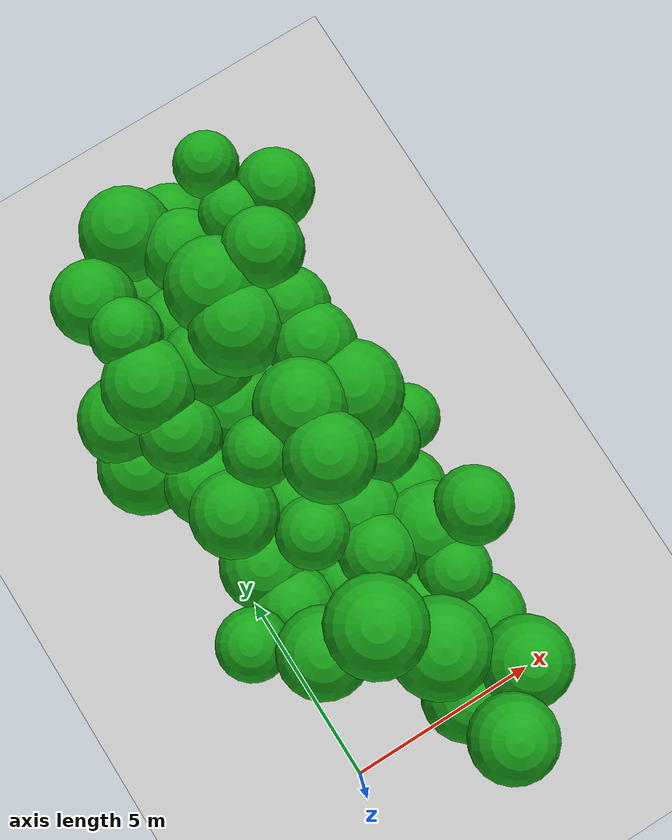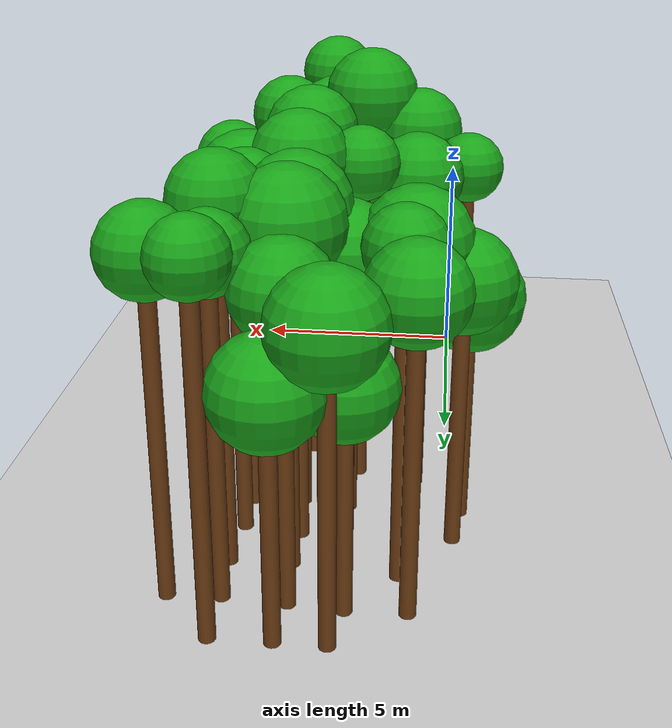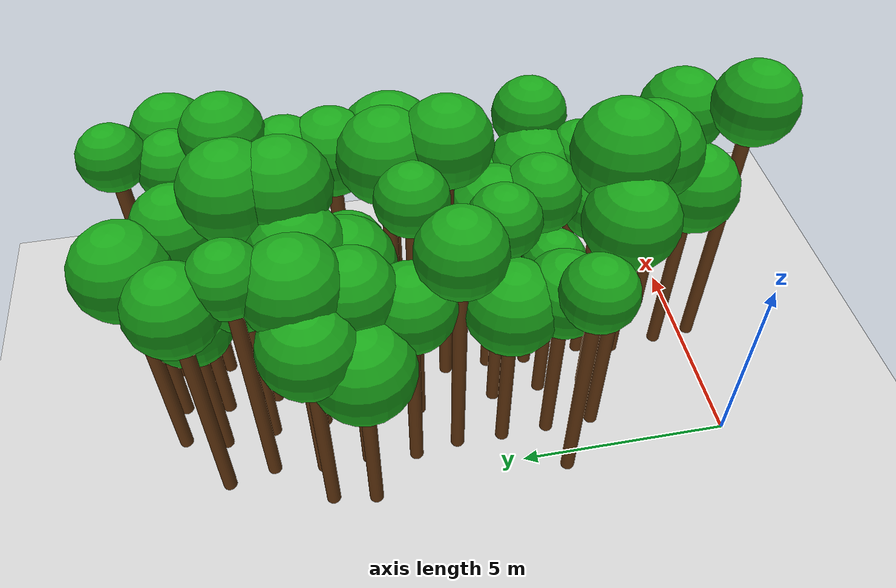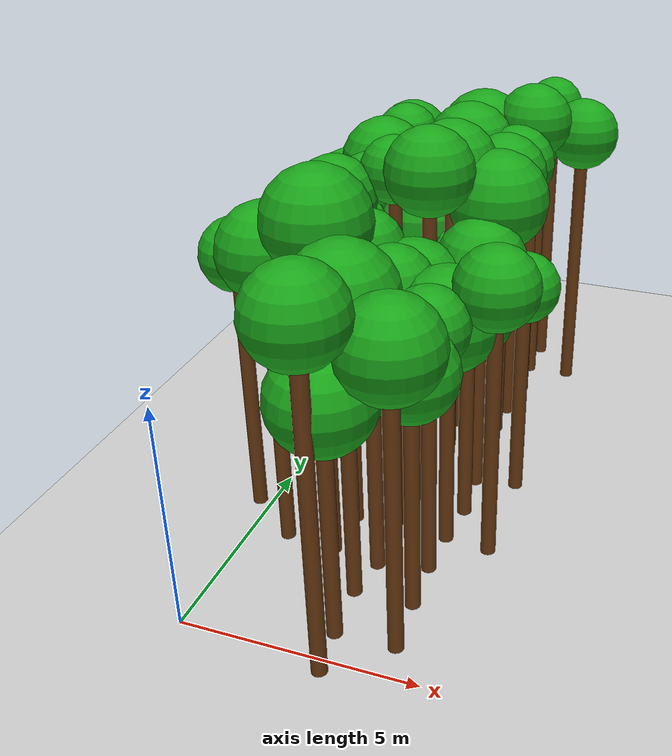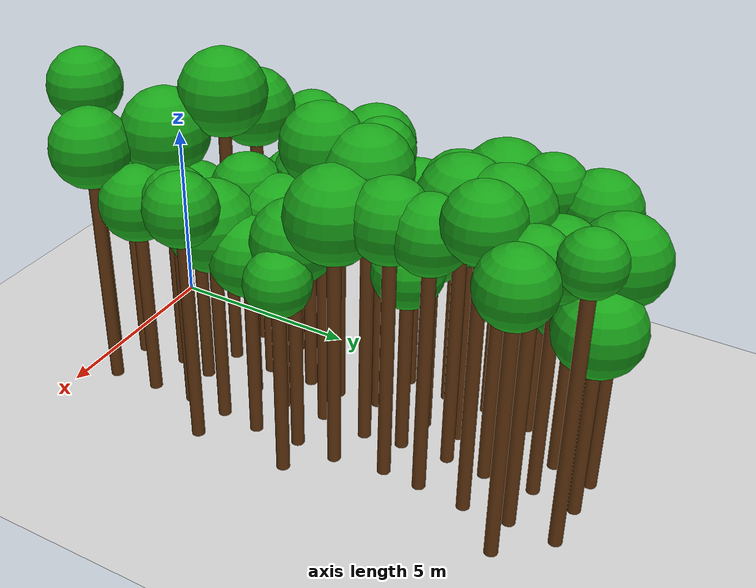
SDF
<sdf version="1.6">
 <world name="forest_world">
  <include><uri>model://sun</uri></include>
  <include><uri>model://ground_plane</uri></include>
  <model name="tree_1502_trunk">
   <static>true</static>
   <pose>-0.30 4.01 2.85 0 0 0</pose>
   <link name="link">
    <collision name="collision">
     <geometry><cylinder><radius>0.16</radius><length>5.70</length></cylinder></geometry>
    </collision>
    <visual name="visual">
     <geometry><cylinder><radius>0.16</radius><length>5.70</length></cylinder></geometry>
     <material><ambient>0.35 0.20 0.05 1</ambient><diffuse>0.45 0.25 0.08 1</diffuse></material>
    </visual>
   </link>
  </model>
  <model name="tree_1502_leaf">
   <static>true</static>
   <pose>-0.30 4.01 6.18 0 0 0</pose>
   <link name="link">
    <collision name="collision"><geometry><sphere><radius>0.79</radius></sphere></geometry></collision>
    <visual name="visual">
     <geometry><sphere><radius>0.79</radius></sphere></geometry>
     <material><ambient>0.05 0.45 0.05 1</ambient><diffuse>0.10 0.65 0.10 1</diffuse></material>
    </visual>
   </link>
  </model>
  <model name="tree_1506_trunk">
   <static>true</static>
   <pose>-0.32 8.59 2.13 0 0 0</pose>
   <link name="link">
    <collision name="collision">
     <geometry><cylinder><radius>0.16</radius><length>4.26</length></cylinder></geometry>
    </collision>
    <visual name="visual">
     <geometry><cylinder><radius>0.16</radius><length>4.26</length></cylinder></geometry>
     <material><ambient>0.35 0.20 0.05 1</ambient><diffuse>0.45 0.25 0.08 1</diffuse></material>
    </visual>
   </link>
  </model>
  <model name="tree_1506_leaf">
   <static>true</static>
   <pose>-0.32 8.59 4.91 0 0 0</pose>
   <link name="link">
    <collision name="collision"><geometry><sphere><radius>1.08</radius></sphere></geometry></collision>
    <visual name="visual">
     <geometry><sphere><radius>1.08</radius></sphere></geometry>
     <material><ambient>0.05 0.45 0.05 1</ambient><diffuse>0.10 0.65 0.10 1</diffuse></material>
    </visual>
   </link>
  </model>
  <model name="tree_1507_trunk">
   <static>true</static>
   <pose>-0.17 9.57 2.52 0 0 0</pose>
   <link name="link">
    <collision name="collision">
     <geometry><cylinder><radius>0.16</radius><length>5.03</length></cylinder></geometry>
    </collision>
    <visual name="visual">
     <geometry><cylinder><radius>0.16</radius><length>5.03</length></cylinder></geometry>
     <material><ambient>0.35 0.20 0.05 1</ambient><diffuse>0.45 0.25 0.08 1</diffuse></material>
    </visual>
   </link>
  </model>
  <model name="tree_1507_leaf">
   <static>true</static>
   <pose>-0.17 9.57 5.63 0 0 0</pose>
   <link name="link">
    <collision name="collision"><geometry><sphere><radius>1.00</radius></sphere></geometry></collision>
    <visual name="visual">
     <geometry><sphere><radius>1.00</radius></sphere></geometry>
     <material><ambient>0.05 0.45 0.05 1</ambient><diffuse>0.10 0.65 0.10 1</diffuse></material>
    </visual>
   </link>
  </model>
  <model name="tree_1551_trunk">
   <static>true</static>
   <pose>0.85 3.10 3.11 0 0 0</pose>
   <link name="link">
    <collision name="collision">
     <geometry><cylinder><radius>0.16</radius><length>6.21</length></cylinder></geometry>
    </collision>
    <visual name="visual">
     <geometry><cylinder><radius>0.16</radius><length>6.21</length></cylinder></geometry>
     <material><ambient>0.35 0.20 0.05 1</ambient><diffuse>0.45 0.25 0.08 1</diffuse></material>
    </visual>
   </link>
  </model>
  <model name="tree_1551_leaf">
   <static>true</static>
   <pose>0.85 3.10 6.80 0 0 0</pose>
   <link name="link">
    <collision name="collision"><geometry><sphere><radius>0.98</radius></sphere></geometry></collision>
    <visual name="visual">
     <geometry><sphere><radius>0.98</radius></sphere></geometry>
     <material><ambient>0.05 0.45 0.05 1</ambient><diffuse>0.10 0.65 0.10 1</diffuse></material>
    </visual>
   </link>
  </model>
  <model name="tree_1552_trunk">
   <static>true</static>
   <pose>0.83 4.24 2.18 0 0 0</pose>
   <link name="link">
    <collision name="collision">
     <geometry><cylinder><radius>0.16</radius><length>4.37</length></cylinder></geometry>
    </collision>
    <visual name="visual">
     <geometry><cylinder><radius>0.16</radius><length>4.37</length></cylinder></geometry>
     <material><ambient>0.35 0.20 0.05 1</ambient><diffuse>0.45 0.25 0.08 1</diffuse></material>
    </visual>
   </link>
  </model>
  <model name="tree_1552_leaf">
   <static>true</static>
   <pose>0.83 4.24 4.94 0 0 0</pose>
   <link name="link">
    <collision name="collision"><geometry><sphere><radius>0.95</radius></sphere></geometry></collision>
    <visual name="visual">
     <geometry><sphere><radius>0.95</radius></sphere></geometry>
     <material><ambient>0.05 0.45 0.05 1</ambient><diffuse>0.10 0.65 0.10 1</diffuse></material>
    </visual>
   </link>
  </model>
  <model name="tree_1553_trunk">
   <static>true</static>
   <pose>0.79 5.36 2.10 0 0 0</pose>
   <link name="link">
    <collision name="collision">
     <geometry><cylinder><radius>0.16</radius><length>4.20</length></cylinder></geometry>
    </collision>
    <visual name="visual">
     <geometry><cylinder><radius>0.16</radius><length>4.20</length></cylinder></geometry>
     <material><ambient>0.35 0.20 0.05 1</ambient><diffuse>0.45 0.25 0.08 1</diffuse></material>
    </visual>
   </link>
  </model>
  <model name="tree_1553_leaf">
   <static>true</static>
   <pose>0.79 5.36 4.83 0 0 0</pose>
   <link name="link">
    <collision name="collision"><geometry><sphere><radius>1.04</radius></sphere></geometry></collision>
    <visual name="visual">
     <geometry><sphere><radius>1.04</radius></sphere></geometry>
     <material><ambient>0.05 0.45 0.05 1</ambient><diffuse>0.10 0.65 0.10 1</diffuse></material>
    </visual>
   </link>
  </model>
  <model name="tree_1554_trunk">
   <static>true</static>
   <pose>0.79 6.46 3.04 0 0 0</pose>
   <link name="link">
    <collision name="collision">
     <geometry><cylinder><radius>0.16</radius><length>6.08</length></cylinder></geometry>
    </collision>
    <visual name="visual">
     <geometry><cylinder><radius>0.16</radius><length>6.08</length></cylinder></geometry>
     <material><ambient>0.35 0.20 0.05 1</ambient><diffuse>0.45 0.25 0.08 1</diffuse></material>
    </visual>
   </link>
  </model>
  <model name="tree_1554_leaf">
   <static>true</static>
   <pose>0.79 6.46 6.64 0 0 0</pose>
   <link name="link">
    <collision name="collision"><geometry><sphere><radius>0.94</radius></sphere></geometry></collision>
    <visual name="visual">
     <geometry><sphere><radius>0.94</radius></sphere></geometry>
     <material><ambient>0.05 0.45 0.05 1</ambient><diffuse>0.10 0.65 0.10 1</diffuse></material>
    </visual>
   </link>
  </model>
  <model name="tree_1555_trunk">
   <static>true</static>
   <pose>0.64 7.49 2.43 0 0 0</pose>
   <link name="link">
    <collision name="collision">
     <geometry><cylinder><radius>0.16</radius><length>4.87</length></cylinder></geometry>
    </collision>
    <visual name="visual">
     <geometry><cylinder><radius>0.16</radius><length>4.87</length></cylinder></geometry>
     <material><ambient>0.35 0.20 0.05 1</ambient><diffuse>0.45 0.25 0.08 1</diffuse></material>
    </visual>
   </link>
  </model>
  <model name="tree_1555_leaf">
   <static>true</static>
   <pose>0.64 7.49 5.43 0 0 0</pose>
   <link name="link">
    <collision name="collision"><geometry><sphere><radius>0.95</radius></sphere></geometry></collision>
    <visual name="visual">
     <geometry><sphere><radius>0.95</radius></sphere></geometry>
     <material><ambient>0.05 0.45 0.05 1</ambient><diffuse>0.10 0.65 0.10 1</diffuse></material>
    </visual>
   </link>
  </model>
  <model name="tree_1556_trunk">
   <static>true</static>
   <pose>0.74 8.62 2.73 0 0 0</pose>
   <link name="link">
    <collision name="collision">
     <geometry><cylinder><radius>0.16</radius><length>5.45</length></cylinder></geometry>
    </collision>
    <visual name="visual">
     <geometry><cylinder><radius>0.16</radius><length>5.45</length></cylinder></geometry>
     <material><ambient>0.35 0.20 0.05 1</ambient><diffuse>0.45 0.25 0.08 1</diffuse></material>
    </visual>
   </link>
  </model>
  <model name="tree_1556_leaf">
   <static>true</static>
   <pose>0.74 8.62 6.01 0 0 0</pose>
   <link name="link">
    <collision name="collision"><geometry><sphere><radius>0.93</radius></sphere></geometry></collision>
    <visual name="visual">
     <geometry><sphere><radius>0.93</radius></sphere></geometry>
     <material><ambient>0.05 0.45 0.05 1</ambient><diffuse>0.10 0.65 0.10 1</diffuse></material>
    </visual>
   </link>
  </model>
  <model name="tree_1557_trunk">
   <static>true</static>
   <pose>0.70 9.70 2.89 0 0 0</pose>
   <link name="link">
    <collision name="collision">
     <geometry><cylinder><radius>0.16</radius><length>5.79</length></cylinder></geometry>
    </collision>
    <visual name="visual">
     <geometry><cylinder><radius>0.16</radius><length>5.79</length></cylinder></geometry>
     <material><ambient>0.35 0.20 0.05 1</ambient><diffuse>0.45 0.25 0.08 1</diffuse></material>
    </visual>
   </link>
  </model>
  <model name="tree_1557_leaf">
   <static>true</static>
   <pose>0.70 9.70 6.42 0 0 0</pose>
   <link name="link">
    <collision name="collision"><geometry><sphere><radius>1.05</radius></sphere></geometry></collision>
    <visual name="visual">
     <geometry><sphere><radius>1.05</radius></sphere></geometry>
     <material><ambient>0.05 0.45 0.05 1</ambient><diffuse>0.10 0.65 0.10 1</diffuse></material>
    </visual>
   </link>
  </model>
  <model name="tree_1558_trunk">
   <static>true</static>
   <pose>0.86 10.86 3.13 0 0 0</pose>
   <link name="link">
    <collision name="collision">
     <geometry><cylinder><radius>0.16</radius><length>6.25</length></cylinder></geometry>
    </collision>
    <visual name="visual">
     <geometry><cylinder><radius>0.16</radius><length>6.25</length></cylinder></geometry>
     <material><ambient>0.35 0.20 0.05 1</ambient><diffuse>0.45 0.25 0.08 1</diffuse></material>
    </visual>
   </link>
  </model>
  <model name="tree_1558_leaf">
   <static>true</static>
   <pose>0.86 10.86 6.72 0 0 0</pose>
   <link name="link">
    <collision name="collision"><geometry><sphere><radius>0.78</radius></sphere></geometry></collision>
    <visual name="visual">
     <geometry><sphere><radius>0.78</radius></sphere></geometry>
     <material><ambient>0.05 0.45 0.05 1</ambient><diffuse>0.10 0.65 0.10 1</diffuse></material>
    </visual>
   </link>
  </model>
  <model name="tree_1559_trunk">
   <static>true</static>
   <pose>0.63 11.92 2.89 0 0 0</pose>
   <link name="link">
    <collision name="collision">
     <geometry><cylinder><radius>0.16</radius><length>5.78</length></cylinder></geometry>
    </collision>
    <visual name="visual">
     <geometry><cylinder><radius>0.16</radius><length>5.78</length></cylinder></geometry>
     <material><ambient>0.35 0.20 0.05 1</ambient><diffuse>0.45 0.25 0.08 1</diffuse></material>
    </visual>
   </link>
  </model>
  <model name="tree_1559_leaf">
   <static>true</static>
   <pose>0.63 11.92 6.34 0 0 0</pose>
   <link name="link">
    <collision name="collision"><geometry><sphere><radius>0.93</radius></sphere></geometry></collision>
    <visual name="visual">
     <geometry><sphere><radius>0.93</radius></sphere></geometry>
     <material><ambient>0.05 0.45 0.05 1</ambient><diffuse>0.10 0.65 0.10 1</diffuse></material>
    </visual>
   </link>
  </model>
  <model name="tree_1602_trunk">
   <static>true</static>
   <pose>1.99 2.99 3.48 0 0 0</pose>
   <link name="link">
    <collision name="collision">
     <geometry><cylinder><radius>0.16</radius><length>6.95</length></cylinder></geometry>
    </collision>
    <visual name="visual">
     <geometry><cylinder><radius>0.16</radius><length>6.95</length></cylinder></geometry>
     <material><ambient>0.35 0.20 0.05 1</ambient><diffuse>0.45 0.25 0.08 1</diffuse></material>
    </visual>
   </link>
  </model>
  <model name="tree_1602_leaf">
   <static>true</static>
   <pose>1.99 2.99 7.60 0 0 0</pose>
   <link name="link">
    <collision name="collision"><geometry><sphere><radius>1.07</radius></sphere></geometry></collision>
    <visual name="visual">
     <geometry><sphere><radius>1.07</radius></sphere></geometry>
     <material><ambient>0.05 0.45 0.05 1</ambient><diffuse>0.10 0.65 0.10 1</diffuse></material>
    </visual>
   </link>
  </model>
  <model name="tree_1603_trunk">
   <static>true</static>
   <pose>2.03 4.13 2.13 0 0 0</pose>
   <link name="link">
    <collision name="collision">
     <geometry><cylinder><radius>0.16</radius><length>4.26</length></cylinder></geometry>
    </collision>
    <visual name="visual">
     <geometry><cylinder><radius>0.16</radius><length>4.26</length></cylinder></geometry>
     <material><ambient>0.35 0.20 0.05 1</ambient><diffuse>0.45 0.25 0.08 1</diffuse></material>
    </visual>
   </link>
  </model>
  <model name="tree_1603_leaf">
   <static>true</static>
   <pose>2.03 4.13 4.69 0 0 0</pose>
   <link name="link">
    <collision name="collision"><geometry><sphere><radius>0.71</radius></sphere></geometry></collision>
    <visual name="visual">
     <geometry><sphere><radius>0.71</radius></sphere></geometry>
     <material><ambient>0.05 0.45 0.05 1</ambient><diffuse>0.10 0.65 0.10 1</diffuse></material>
    </visual>
   </link>
  </model>
  <model name="tree_1604_trunk">
   <static>true</static>
   <pose>1.98 5.32 2.83 0 0 0</pose>
   <link name="link">
    <collision name="collision">
     <geometry><cylinder><radius>0.16</radius><length>5.65</length></cylinder></geometry>
    </collision>
    <visual name="visual">
     <geometry><cylinder><radius>0.16</radius><length>5.65</length></cylinder></geometry>
     <material><ambient>0.35 0.20 0.05 1</ambient><diffuse>0.45 0.25 0.08 1</diffuse></material>
    </visual>
   </link>
  </model>
  <model name="tree_1604_leaf">
   <static>true</static>
   <pose>1.98 5.32 6.13 0 0 0</pose>
   <link name="link">
    <collision name="collision"><geometry><sphere><radius>0.80</radius></sphere></geometry></collision>
    <visual name="visual">
     <geometry><sphere><radius>0.80</radius></sphere></geometry>
     <material><ambient>0.05 0.45 0.05 1</ambient><diffuse>0.10 0.65 0.10 1</diffuse></material>
    </visual>
   </link>
  </model>
  <model name="tree_1605_trunk">
   <static>true</static>
   <pose>2.03 6.18 2.13 0 0 0</pose>
   <link name="link">
    <collision name="collision">
     <geometry><cylinder><radius>0.16</radius><length>4.26</length></cylinder></geometry>
    </collision>
    <visual name="visual">
     <geometry><cylinder><radius>0.16</radius><length>4.26</length></cylinder></geometry>
     <material><ambient>0.35 0.20 0.05 1</ambient><diffuse>0.45 0.25 0.08 1</diffuse></material>
    </visual>
   </link>
  </model>
  <model name="tree_1605_leaf">
   <static>true</static>
   <pose>2.03 6.18 4.73 0 0 0</pose>
   <link name="link">
    <collision name="collision"><geometry><sphere><radius>0.78</radius></sphere></geometry></collision>
    <visual name="visual">
     <geometry><sphere><radius>0.78</radius></sphere></geometry>
     <material><ambient>0.05 0.45 0.05 1</ambient><diffuse>0.10 0.65 0.10 1</diffuse></material>
    </visual>
   </link>
  </model>
  <model name="tree_1606_trunk">
   <static>true</static>
   <pose>1.89 7.22 3.34 0 0 0</pose>
   <link name="link">
    <collision name="collision">
     <geometry><cylinder><radius>0.16</radius><length>6.67</length></cylinder></geometry>
    </collision>
    <visual name="visual">
     <geometry><cylinder><radius>0.16</radius><length>6.67</length></cylinder></geometry>
     <material><ambient>0.35 0.20 0.05 1</ambient><diffuse>0.45 0.25 0.08 1</diffuse></material>
    </visual>
   </link>
  </model>
  <model name="tree_1606_leaf">
   <static>true</static>
   <pose>1.89 7.22 7.13 0 0 0</pose>
   <link name="link">
    <collision name="collision"><geometry><sphere><radius>0.76</radius></sphere></geometry></collision>
    <visual name="visual">
     <geometry><sphere><radius>0.76</radius></sphere></geometry>
     <material><ambient>0.05 0.45 0.05 1</ambient><diffuse>0.10 0.65 0.10 1</diffuse></material>
    </visual>
   </link>
  </model>
  <model name="tree_1607_trunk">
   <static>true</static>
   <pose>1.99 8.62 2.39 0 0 0</pose>
   <link name="link">
    <collision name="collision">
     <geometry><cylinder><radius>0.16</radius><length>4.77</length></cylinder></geometry>
    </collision>
    <visual name="visual">
     <geometry><cylinder><radius>0.16</radius><length>4.77</length></cylinder></geometry>
     <material><ambient>0.35 0.20 0.05 1</ambient><diffuse>0.45 0.25 0.08 1</diffuse></material>
    </visual>
   </link>
  </model>
  <model name="tree_1607_leaf">
   <static>true</static>
   <pose>1.99 8.62 5.42 0 0 0</pose>
   <link name="link">
    <collision name="collision"><geometry><sphere><radius>1.08</radius></sphere></geometry></collision>
    <visual name="visual">
     <geometry><sphere><radius>1.08</radius></sphere></geometry>
     <material><ambient>0.05 0.45 0.05 1</ambient><diffuse>0.10 0.65 0.10 1</diffuse></material>
    </visual>
   </link>
  </model>
  <model name="tree_1608_trunk">
   <static>true</static>
   <pose>1.98 9.54 2.73 0 0 0</pose>
   <link name="link">
    <collision name="collision">
     <geometry><cylinder><radius>0.16</radius><length>5.46</length></cylinder></geometry>
    </collision>
    <visual name="visual">
     <geometry><cylinder><radius>0.16</radius><length>5.46</length></cylinder></geometry>
     <material><ambient>0.35 0.20 0.05 1</ambient><diffuse>0.45 0.25 0.08 1</diffuse></material>
    </visual>
   </link>
  </model>
  <model name="tree_1608_leaf">
   <static>true</static>
   <pose>1.98 9.54 6.08 0 0 0</pose>
   <link name="link">
    <collision name="collision"><geometry><sphere><radius>1.03</radius></sphere></geometry></collision>
    <visual name="visual">
     <geometry><sphere><radius>1.03</radius></sphere></geometry>
     <material><ambient>0.05 0.45 0.05 1</ambient><diffuse>0.10 0.65 0.10 1</diffuse></material>
    </visual>
   </link>
  </model>
  <model name="tree_1609_trunk">
   <static>true</static>
   <pose>1.92 10.79 2.36 0 0 0</pose>
   <link name="link">
    <collision name="collision">
     <geometry><cylinder><radius>0.16</radius><length>4.71</length></cylinder></geometry>
    </collision>
    <visual name="visual">
     <geometry><cylinder><radius>0.16</radius><length>4.71</length></cylinder></geometry>
     <material><ambient>0.35 0.20 0.05 1</ambient><diffuse>0.45 0.25 0.08 1</diffuse></material>
    </visual>
   </link>
  </model>
  <model name="tree_1609_leaf">
   <static>true</static>
   <pose>1.92 10.79 5.26 0 0 0</pose>
   <link name="link">
    <collision name="collision"><geometry><sphere><radius>0.92</radius></sphere></geometry></collision>
    <visual name="visual">
     <geometry><sphere><radius>0.92</radius></sphere></geometry>
     <material><ambient>0.05 0.45 0.05 1</ambient><diffuse>0.10 0.65 0.10 1</diffuse></material>
    </visual>
   </link>
  </model>
  <model name="tree_1610_trunk">
   <static>true</static>
   <pose>1.79 11.95 2.01 0 0 0</pose>
   <link name="link">
    <collision name="collision">
     <geometry><cylinder><radius>0.16</radius><length>4.03</length></cylinder></geometry>
    </collision>
    <visual name="visual">
     <geometry><cylinder><radius>0.16</radius><length>4.03</length></cylinder></geometry>
     <material><ambient>0.35 0.20 0.05 1</ambient><diffuse>0.45 0.25 0.08 1</diffuse></material>
    </visual>
   </link>
  </model>
  <model name="tree_1610_leaf">
   <static>true</static>
   <pose>1.79 11.95 4.60 0 0 0</pose>
   <link name="link">
    <collision name="collision"><geometry><sphere><radius>0.96</radius></sphere></geometry></collision>
    <visual name="visual">
     <geometry><sphere><radius>0.96</radius></sphere></geometry>
     <material><ambient>0.05 0.45 0.05 1</ambient><diffuse>0.10 0.65 0.10 1</diffuse></material>
    </visual>
   </link>
  </model>
  <model name="tree_1611_trunk">
   <static>true</static>
   <pose>1.99 12.92 2.76 0 0 0</pose>
   <link name="link">
    <collision name="collision">
     <geometry><cylinder><radius>0.16</radius><length>5.51</length></cylinder></geometry>
    </collision>
    <visual name="visual">
     <geometry><cylinder><radius>0.16</radius><length>5.51</length></cylinder></geometry>
     <material><ambient>0.35 0.20 0.05 1</ambient><diffuse>0.45 0.25 0.08 1</diffuse></material>
    </visual>
   </link>
  </model>
  <model name="tree_1611_leaf">
   <static>true</static>
   <pose>1.99 12.92 6.13 0 0 0</pose>
   <link name="link">
    <collision name="collision"><geometry><sphere><radius>1.03</radius></sphere></geometry></collision>
    <visual name="visual">
     <geometry><sphere><radius>1.03</radius></sphere></geometry>
     <material><ambient>0.05 0.45 0.05 1</ambient><diffuse>0.10 0.65 0.10 1</diffuse></material>
    </visual>
   </link>
  </model>
  <model name="tree_1654_trunk">
   <static>true</static>
   <pose>3.10 -0.25 3.46 0 0 0</pose>
   <link name="link">
    <collision name="collision">
     <geometry><cylinder><radius>0.16</radius><length>6.92</length></cylinder></geometry>
    </collision>
    <visual name="visual">
     <geometry><cylinder><radius>0.16</radius><length>6.92</length></cylinder></geometry>
     <material><ambient>0.35 0.20 0.05 1</ambient><diffuse>0.45 0.25 0.08 1</diffuse></material>
    </visual>
   </link>
  </model>
  <model name="tree_1654_leaf">
   <static>true</static>
   <pose>3.10 -0.25 7.47 0 0 0</pose>
   <link name="link">
    <collision name="collision"><geometry><sphere><radius>0.92</radius></sphere></geometry></collision>
    <visual name="visual">
     <geometry><sphere><radius>0.92</radius></sphere></geometry>
     <material><ambient>0.05 0.45 0.05 1</ambient><diffuse>0.10 0.65 0.10 1</diffuse></material>
    </visual>
   </link>
  </model>
  <model name="tree_1655_trunk">
   <static>true</static>
   <pose>2.99 0.72 2.37 0 0 0</pose>
   <link name="link">
    <collision name="collision">
     <geometry><cylinder><radius>0.16</radius><length>4.73</length></cylinder></geometry>
    </collision>
    <visual name="visual">
     <geometry><cylinder><radius>0.16</radius><length>4.73</length></cylinder></geometry>
     <material><ambient>0.35 0.20 0.05 1</ambient><diffuse>0.45 0.25 0.08 1</diffuse></material>
    </visual>
   </link>
  </model>
  <model name="tree_1655_leaf">
   <static>true</static>
   <pose>2.99 0.72 5.36 0 0 0</pose>
   <link name="link">
    <collision name="collision"><geometry><sphere><radius>1.04</radius></sphere></geometry></collision>
    <visual name="visual">
     <geometry><sphere><radius>1.04</radius></sphere></geometry>
     <material><ambient>0.05 0.45 0.05 1</ambient><diffuse>0.10 0.65 0.10 1</diffuse></material>
    </visual>
   </link>
  </model>
  <model name="tree_1656_trunk">
   <static>true</static>
   <pose>2.90 1.93 3.02 0 0 0</pose>
   <link name="link">
    <collision name="collision">
     <geometry><cylinder><radius>0.16</radius><length>6.05</length></cylinder></geometry>
    </collision>
    <visual name="visual">
     <geometry><cylinder><radius>0.16</radius><length>6.05</length></cylinder></geometry>
     <material><ambient>0.35 0.20 0.05 1</ambient><diffuse>0.45 0.25 0.08 1</diffuse></material>
    </visual>
   </link>
  </model>
  <model name="tree_1656_leaf">
   <static>true</static>
   <pose>2.90 1.93 6.70 0 0 0</pose>
   <link name="link">
    <collision name="collision"><geometry><sphere><radius>1.09</radius></sphere></geometry></collision>
    <visual name="visual">
     <geometry><sphere><radius>1.09</radius></sphere></geometry>
     <material><ambient>0.05 0.45 0.05 1</ambient><diffuse>0.10 0.65 0.10 1</diffuse></material>
    </visual>
   </link>
  </model>
  <model name="tree_1657_trunk">
   <static>true</static>
   <pose>3.05 2.83 2.35 0 0 0</pose>
   <link name="link">
    <collision name="collision">
     <geometry><cylinder><radius>0.16</radius><length>4.69</length></cylinder></geometry>
    </collision>
    <visual name="visual">
     <geometry><cylinder><radius>0.16</radius><length>4.69</length></cylinder></geometry>
     <material><ambient>0.35 0.20 0.05 1</ambient><diffuse>0.45 0.25 0.08 1</diffuse></material>
    </visual>
   </link>
  </model>
  <model name="tree_1657_leaf">
   <static>true</static>
   <pose>3.05 2.83 5.24 0 0 0</pose>
   <link name="link">
    <collision name="collision"><geometry><sphere><radius>0.91</radius></sphere></geometry></collision>
    <visual name="visual">
     <geometry><sphere><radius>0.91</radius></sphere></geometry>
     <material><ambient>0.05 0.45 0.05 1</ambient><diffuse>0.10 0.65 0.10 1</diffuse></material>
    </visual>
   </link>
  </model>
  <model name="tree_1658_trunk">
   <static>true</static>
   <pose>2.95 4.27 2.66 0 0 0</pose>
   <link name="link">
    <collision name="collision">
     <geometry><cylinder><radius>0.16</radius><length>5.32</length></cylinder></geometry>
    </collision>
    <visual name="visual">
     <geometry><cylinder><radius>0.16</radius><length>5.32</length></cylinder></geometry>
     <material><ambient>0.35 0.20 0.05 1</ambient><diffuse>0.45 0.25 0.08 1</diffuse></material>
    </visual>
   </link>
  </model>
  <model name="tree_1658_leaf">
   <static>true</static>
   <pose>2.95 4.27 5.84 0 0 0</pose>
   <link name="link">
    <collision name="collision"><geometry><sphere><radius>0.87</radius></sphere></geometry></collision>
    <visual name="visual">
     <geometry><sphere><radius>0.87</radius></sphere></geometry>
     <material><ambient>0.05 0.45 0.05 1</ambient><diffuse>0.10 0.65 0.10 1</diffuse></material>
    </visual>
   </link>
  </model>
  <model name="tree_1659_trunk">
   <static>true</static>
   <pose>3.03 5.25 2.34 0 0 0</pose>
   <link name="link">
    <collision name="collision">
     <geometry><cylinder><radius>0.16</radius><length>4.69</length></cylinder></geometry>
    </collision>
    <visual name="visual">
     <geometry><cylinder><radius>0.16</radius><length>4.69</length></cylinder></geometry>
     <material><ambient>0.35 0.20 0.05 1</ambient><diffuse>0.45 0.25 0.08 1</diffuse></material>
    </visual>
   </link>
  </model>
  <model name="tree_1659_leaf">
   <static>true</static>
   <pose>3.03 5.25 5.34 0 0 0</pose>
   <link name="link">
    <collision name="collision"><geometry><sphere><radius>1.09</radius></sphere></geometry></collision>
    <visual name="visual">
     <geometry><sphere><radius>1.09</radius></sphere></geometry>
     <material><ambient>0.05 0.45 0.05 1</ambient><diffuse>0.10 0.65 0.10 1</diffuse></material>
    </visual>
   </link>
  </model>
  <model name="tree_1660_trunk">
   <static>true</static>
   <pose>3.00 6.33 3.47 0 0 0</pose>
   <link name="link">
    <collision name="collision">
     <geometry><cylinder><radius>0.16</radius><length>6.94</length></cylinder></geometry>
    </collision>
    <visual name="visual">
     <geometry><cylinder><radius>0.16</radius><length>6.94</length></cylinder></geometry>
     <material><ambient>0.35 0.20 0.05 1</ambient><diffuse>0.45 0.25 0.08 1</diffuse></material>
    </visual>
   </link>
  </model>
  <model name="tree_1660_leaf">
   <static>true</static>
   <pose>3.00 6.33 7.52 0 0 0</pose>
   <link name="link">
    <collision name="collision"><geometry><sphere><radius>0.96</radius></sphere></geometry></collision>
    <visual name="visual">
     <geometry><sphere><radius>0.96</radius></sphere></geometry>
     <material><ambient>0.05 0.45 0.05 1</ambient><diffuse>0.10 0.65 0.10 1</diffuse></material>
    </visual>
   </link>
  </model>
  <model name="tree_1661_trunk">
   <static>true</static>
   <pose>3.10 7.54 3.33 0 0 0</pose>
   <link name="link">
    <collision name="collision">
     <geometry><cylinder><radius>0.16</radius><length>6.66</length></cylinder></geometry>
    </collision>
    <visual name="visual">
     <geometry><cylinder><radius>0.16</radius><length>6.66</length></cylinder></geometry>
     <material><ambient>0.35 0.20 0.05 1</ambient><diffuse>0.45 0.25 0.08 1</diffuse></material>
    </visual>
   </link>
  </model>
  <model name="tree_1661_leaf">
   <static>true</static>
   <pose>3.10 7.54 7.26 0 0 0</pose>
   <link name="link">
    <collision name="collision"><geometry><sphere><radius>1.01</radius></sphere></geometry></collision>
    <visual name="visual">
     <geometry><sphere><radius>1.01</radius></sphere></geometry>
     <material><ambient>0.05 0.45 0.05 1</ambient><diffuse>0.10 0.65 0.10 1</diffuse></material>
    </visual>
   </link>
  </model>
  <model name="tree_1662_trunk">
   <static>true</static>
   <pose>2.96 8.49 2.21 0 0 0</pose>
   <link name="link">
    <collision name="collision">
     <geometry><cylinder><radius>0.16</radius><length>4.42</length></cylinder></geometry>
    </collision>
    <visual name="visual">
     <geometry><cylinder><radius>0.16</radius><length>4.42</length></cylinder></geometry>
     <material><ambient>0.35 0.20 0.05 1</ambient><diffuse>0.45 0.25 0.08 1</diffuse></material>
    </visual>
   </link>
  </model>
  <model name="tree_1662_leaf">
   <static>true</static>
   <pose>2.96 8.49 4.93 0 0 0</pose>
   <link name="link">
    <collision name="collision"><geometry><sphere><radius>0.84</radius></sphere></geometry></collision>
    <visual name="visual">
     <geometry><sphere><radius>0.84</radius></sphere></geometry>
     <material><ambient>0.05 0.45 0.05 1</ambient><diffuse>0.10 0.65 0.10 1</diffuse></material>
    </visual>
   </link>
  </model>
  <model name="tree_1663_trunk">
   <static>true</static>
   <pose>2.87 9.67 3.19 0 0 0</pose>
   <link name="link">
    <collision name="collision">
     <geometry><cylinder><radius>0.16</radius><length>6.38</length></cylinder></geometry>
    </collision>
    <visual name="visual">
     <geometry><cylinder><radius>0.16</radius><length>6.38</length></cylinder></geometry>
     <material><ambient>0.35 0.20 0.05 1</ambient><diffuse>0.45 0.25 0.08 1</diffuse></material>
    </visual>
   </link>
  </model>
  <model name="tree_1663_leaf">
   <static>true</static>
   <pose>2.87 9.67 7.00 0 0 0</pose>
   <link name="link">
    <collision name="collision"><geometry><sphere><radius>1.04</radius></sphere></geometry></collision>
    <visual name="visual">
     <geometry><sphere><radius>1.04</radius></sphere></geometry>
     <material><ambient>0.05 0.45 0.05 1</ambient><diffuse>0.10 0.65 0.10 1</diffuse></material>
    </visual>
   </link>
  </model>
  <model name="tree_1664_trunk">
   <static>true</static>
   <pose>2.92 10.66 3.18 0 0 0</pose>
   <link name="link">
    <collision name="collision">
     <geometry><cylinder><radius>0.16</radius><length>6.37</length></cylinder></geometry>
    </collision>
    <visual name="visual">
     <geometry><cylinder><radius>0.16</radius><length>6.37</length></cylinder></geometry>
     <material><ambient>0.35 0.20 0.05 1</ambient><diffuse>0.45 0.25 0.08 1</diffuse></material>
    </visual>
   </link>
  </model>
  <model name="tree_1664_leaf">
   <static>true</static>
   <pose>2.92 10.66 7.01 0 0 0</pose>
   <link name="link">
    <collision name="collision"><geometry><sphere><radius>1.07</radius></sphere></geometry></collision>
    <visual name="visual">
     <geometry><sphere><radius>1.07</radius></sphere></geometry>
     <material><ambient>0.05 0.45 0.05 1</ambient><diffuse>0.10 0.65 0.10 1</diffuse></material>
    </visual>
   </link>
  </model>
  <model name="tree_1665_trunk">
   <static>true</static>
   <pose>2.84 11.86 2.85 0 0 0</pose>
   <link name="link">
    <collision name="collision">
     <geometry><cylinder><radius>0.16</radius><length>5.71</length></cylinder></geometry>
    </collision>
    <visual name="visual">
     <geometry><cylinder><radius>0.16</radius><length>5.71</length></cylinder></geometry>
     <material><ambient>0.35 0.20 0.05 1</ambient><diffuse>0.45 0.25 0.08 1</diffuse></material>
    </visual>
   </link>
  </model>
  <model name="tree_1665_leaf">
   <static>true</static>
   <pose>2.84 11.86 6.27 0 0 0</pose>
   <link name="link">
    <collision name="collision"><geometry><sphere><radius>0.94</radius></sphere></geometry></collision>
    <visual name="visual">
     <geometry><sphere><radius>0.94</radius></sphere></geometry>
     <material><ambient>0.05 0.45 0.05 1</ambient><diffuse>0.10 0.65 0.10 1</diffuse></material>
    </visual>
   </link>
  </model>
  <model name="tree_1666_trunk">
   <static>true</static>
   <pose>2.96 12.91 2.17 0 0 0</pose>
   <link name="link">
    <collision name="collision">
     <geometry><cylinder><radius>0.16</radius><length>4.35</length></cylinder></geometry>
    </collision>
    <visual name="visual">
     <geometry><cylinder><radius>0.16</radius><length>4.35</length></cylinder></geometry>
     <material><ambient>0.35 0.20 0.05 1</ambient><diffuse>0.45 0.25 0.08 1</diffuse></material>
    </visual>
   </link>
  </model>
  <model name="tree_1666_leaf">
   <static>true</static>
   <pose>2.96 12.91 4.96 0 0 0</pose>
   <link name="link">
    <collision name="collision"><geometry><sphere><radius>1.02</radius></sphere></geometry></collision>
    <visual name="visual">
     <geometry><sphere><radius>1.02</radius></sphere></geometry>
     <material><ambient>0.05 0.45 0.05 1</ambient><diffuse>0.10 0.65 0.10 1</diffuse></material>
    </visual>
   </link>
  </model>
  <model name="tree_1710_trunk">
   <static>true</static>
   <pose>4.24 0.76 2.98 0 0 0</pose>
   <link name="link">
    <collision name="collision">
     <geometry><cylinder><radius>0.16</radius><length>5.96</length></cylinder></geometry>
    </collision>
    <visual name="visual">
     <geometry><cylinder><radius>0.16</radius><length>5.96</length></cylinder></geometry>
     <material><ambient>0.35 0.20 0.05 1</ambient><diffuse>0.45 0.25 0.08 1</diffuse></material>
    </visual>
   </link>
  </model>
  <model name="tree_1710_leaf">
   <static>true</static>
   <pose>4.24 0.76 6.55 0 0 0</pose>
   <link name="link">
    <collision name="collision"><geometry><sphere><radius>0.98</radius></sphere></geometry></collision>
    <visual name="visual">
     <geometry><sphere><radius>0.98</radius></sphere></geometry>
     <material><ambient>0.05 0.45 0.05 1</ambient><diffuse>0.10 0.65 0.10 1</diffuse></material>
    </visual>
   </link>
  </model>
  <model name="tree_1711_trunk">
   <static>true</static>
   <pose>4.15 1.96 2.42 0 0 0</pose>
   <link name="link">
    <collision name="collision">
     <geometry><cylinder><radius>0.16</radius><length>4.84</length></cylinder></geometry>
    </collision>
    <visual name="visual">
     <geometry><cylinder><radius>0.16</radius><length>4.84</length></cylinder></geometry>
     <material><ambient>0.35 0.20 0.05 1</ambient><diffuse>0.45 0.25 0.08 1</diffuse></material>
    </visual>
   </link>
  </model>
  <model name="tree_1711_leaf">
   <static>true</static>
   <pose>4.15 1.96 5.39 0 0 0</pose>
   <link name="link">
    <collision name="collision"><geometry><sphere><radius>0.93</radius></sphere></geometry></collision>
    <visual name="visual">
     <geometry><sphere><radius>0.93</radius></sphere></geometry>
     <material><ambient>0.05 0.45 0.05 1</ambient><diffuse>0.10 0.65 0.10 1</diffuse></material>
    </visual>
   </link>
  </model>
  <model name="tree_1712_trunk">
   <static>true</static>
   <pose>4.10 3.08 2.63 0 0 0</pose>
   <link name="link">
    <collision name="collision">
     <geometry><cylinder><radius>0.16</radius><length>5.26</length></cylinder></geometry>
    </collision>
    <visual name="visual">
     <geometry><cylinder><radius>0.16</radius><length>5.26</length></cylinder></geometry>
     <material><ambient>0.35 0.20 0.05 1</ambient><diffuse>0.45 0.25 0.08 1</diffuse></material>
    </visual>
   </link>
  </model>
  <model name="tree_1712_leaf">
   <static>true</static>
   <pose>4.10 3.08 5.75 0 0 0</pose>
   <link name="link">
    <collision name="collision"><geometry><sphere><radius>0.81</radius></sphere></geometry></collision>
    <visual name="visual">
     <geometry><sphere><radius>0.81</radius></sphere></geometry>
     <material><ambient>0.05 0.45 0.05 1</ambient><diffuse>0.10 0.65 0.10 1</diffuse></material>
    </visual>
   </link>
  </model>
  <model name="tree_1713_trunk">
   <static>true</static>
   <pose>4.14 4.12 2.38 0 0 0</pose>
   <link name="link">
    <collision name="collision">
     <geometry><cylinder><radius>0.16</radius><length>4.76</length></cylinder></geometry>
    </collision>
    <visual name="visual">
     <geometry><cylinder><radius>0.16</radius><length>4.76</length></cylinder></geometry>
     <material><ambient>0.35 0.20 0.05 1</ambient><diffuse>0.45 0.25 0.08 1</diffuse></material>
    </visual>
   </link>
  </model>
  <model name="tree_1713_leaf">
   <static>true</static>
   <pose>4.14 4.12 5.41 0 0 0</pose>
   <link name="link">
    <collision name="collision"><geometry><sphere><radius>1.09</radius></sphere></geometry></collision>
    <visual name="visual">
     <geometry><sphere><radius>1.09</radius></sphere></geometry>
     <material><ambient>0.05 0.45 0.05 1</ambient><diffuse>0.10 0.65 0.10 1</diffuse></material>
    </visual>
   </link>
  </model>
  <model name="tree_1714_trunk">
   <static>true</static>
   <pose>4.24 5.14 2.21 0 0 0</pose>
   <link name="link">
    <collision name="collision">
     <geometry><cylinder><radius>0.16</radius><length>4.42</length></cylinder></geometry>
    </collision>
    <visual name="visual">
     <geometry><cylinder><radius>0.16</radius><length>4.42</length></cylinder></geometry>
     <material><ambient>0.35 0.20 0.05 1</ambient><diffuse>0.45 0.25 0.08 1</diffuse></material>
    </visual>
   </link>
  </model>
  <model name="tree_1714_leaf">
   <static>true</static>
   <pose>4.24 5.14 4.98 0 0 0</pose>
   <link name="link">
    <collision name="collision"><geometry><sphere><radius>0.94</radius></sphere></geometry></collision>
    <visual name="visual">
     <geometry><sphere><radius>0.94</radius></sphere></geometry>
     <material><ambient>0.05 0.45 0.05 1</ambient><diffuse>0.10 0.65 0.10 1</diffuse></material>
    </visual>
   </link>
  </model>
  <model name="tree_1715_trunk">
   <static>true</static>
   <pose>4.16 6.29 2.54 0 0 0</pose>
   <link name="link">
    <collision name="collision">
     <geometry><cylinder><radius>0.16</radius><length>5.08</length></cylinder></geometry>
    </collision>
    <visual name="visual">
     <geometry><cylinder><radius>0.16</radius><length>5.08</length></cylinder></geometry>
     <material><ambient>0.35 0.20 0.05 1</ambient><diffuse>0.45 0.25 0.08 1</diffuse></material>
    </visual>
   </link>
  </model>
  <model name="tree_1715_leaf">
   <static>true</static>
   <pose>4.16 6.29 5.67 0 0 0</pose>
   <link name="link">
    <collision name="collision"><geometry><sphere><radius>0.98</radius></sphere></geometry></collision>
    <visual name="visual">
     <geometry><sphere><radius>0.98</radius></sphere></geometry>
     <material><ambient>0.05 0.45 0.05 1</ambient><diffuse>0.10 0.65 0.10 1</diffuse></material>
    </visual>
   </link>
  </model>
  <model name="tree_1716_trunk">
   <static>true</static>
   <pose>4.21 7.34 3.00 0 0 0</pose>
   <link name="link">
    <collision name="collision">
     <geometry><cylinder><radius>0.16</radius><length>6.01</length></cylinder></geometry>
    </collision>
    <visual name="visual">
     <geometry><cylinder><radius>0.16</radius><length>6.01</length></cylinder></geometry>
     <material><ambient>0.35 0.20 0.05 1</ambient><diffuse>0.45 0.25 0.08 1</diffuse></material>
    </visual>
   </link>
  </model>
  <model name="tree_1716_leaf">
   <static>true</static>
   <pose>4.21 7.34 6.67 0 0 0</pose>
   <link name="link">
    <collision name="collision"><geometry><sphere><radius>1.10</radius></sphere></geometry></collision>
    <visual name="visual">
     <geometry><sphere><radius>1.10</radius></sphere></geometry>
     <material><ambient>0.05 0.45 0.05 1</ambient><diffuse>0.10 0.65 0.10 1</diffuse></material>
    </visual>
   </link>
  </model>
  <model name="tree_1717_trunk">
   <static>true</static>
   <pose>4.01 8.58 3.11 0 0 0</pose>
   <link name="link">
    <collision name="collision">
     <geometry><cylinder><radius>0.16</radius><length>6.22</length></cylinder></geometry>
    </collision>
    <visual name="visual">
     <geometry><cylinder><radius>0.16</radius><length>6.22</length></cylinder></geometry>
     <material><ambient>0.35 0.20 0.05 1</ambient><diffuse>0.45 0.25 0.08 1</diffuse></material>
    </visual>
   </link>
  </model>
  <model name="tree_1717_leaf">
   <static>true</static>
   <pose>4.01 8.58 6.79 0 0 0</pose>
   <link name="link">
    <collision name="collision"><geometry><sphere><radius>0.95</radius></sphere></geometry></collision>
    <visual name="visual">
     <geometry><sphere><radius>0.95</radius></sphere></geometry>
     <material><ambient>0.05 0.45 0.05 1</ambient><diffuse>0.10 0.65 0.10 1</diffuse></material>
    </visual>
   </link>
  </model>
  <model name="tree_1718_trunk">
   <static>true</static>
   <pose>4.04 9.52 3.11 0 0 0</pose>
   <link name="link">
    <collision name="collision">
     <geometry><cylinder><radius>0.16</radius><length>6.23</length></cylinder></geometry>
    </collision>
    <visual name="visual">
     <geometry><cylinder><radius>0.16</radius><length>6.23</length></cylinder></geometry>
     <material><ambient>0.35 0.20 0.05 1</ambient><diffuse>0.45 0.25 0.08 1</diffuse></material>
    </visual>
   </link>
  </model>
  <model name="tree_1718_leaf">
   <static>true</static>
   <pose>4.04 9.52 6.76 0 0 0</pose>
   <link name="link">
    <collision name="collision"><geometry><sphere><radius>0.88</radius></sphere></geometry></collision>
    <visual name="visual">
     <geometry><sphere><radius>0.88</radius></sphere></geometry>
     <material><ambient>0.05 0.45 0.05 1</ambient><diffuse>0.10 0.65 0.10 1</diffuse></material>
    </visual>
   </link>
  </model>
  <model name="tree_1719_trunk">
   <static>true</static>
   <pose>4.14 10.70 3.45 0 0 0</pose>
   <link name="link">
    <collision name="collision">
     <geometry><cylinder><radius>0.16</radius><length>6.90</length></cylinder></geometry>
    </collision>
    <visual name="visual">
     <geometry><cylinder><radius>0.16</radius><length>6.90</length></cylinder></geometry>
     <material><ambient>0.35 0.20 0.05 1</ambient><diffuse>0.45 0.25 0.08 1</diffuse></material>
    </visual>
   </link>
  </model>
  <model name="tree_1719_leaf">
   <static>true</static>
   <pose>4.14 10.70 7.43 0 0 0</pose>
   <link name="link">
    <collision name="collision"><geometry><sphere><radius>0.88</radius></sphere></geometry></collision>
    <visual name="visual">
     <geometry><sphere><radius>0.88</radius></sphere></geometry>
     <material><ambient>0.05 0.45 0.05 1</ambient><diffuse>0.10 0.65 0.10 1</diffuse></material>
    </visual>
   </link>
  </model>
  <model name="tree_1720_trunk">
   <static>true</static>
   <pose>4.08 11.80 3.20 0 0 0</pose>
   <link name="link">
    <collision name="collision">
     <geometry><cylinder><radius>0.16</radius><length>6.39</length></cylinder></geometry>
    </collision>
    <visual name="visual">
     <geometry><cylinder><radius>0.16</radius><length>6.39</length></cylinder></geometry>
     <material><ambient>0.35 0.20 0.05 1</ambient><diffuse>0.45 0.25 0.08 1</diffuse></material>
    </visual>
   </link>
  </model>
  <model name="tree_1720_leaf">
   <static>true</static>
   <pose>4.08 11.80 6.85 0 0 0</pose>
   <link name="link">
    <collision name="collision"><geometry><sphere><radius>0.76</radius></sphere></geometry></collision>
    <visual name="visual">
     <geometry><sphere><radius>0.76</radius></sphere></geometry>
     <material><ambient>0.05 0.45 0.05 1</ambient><diffuse>0.10 0.65 0.10 1</diffuse></material>
    </visual>
   </link>
  </model>
  <model name="tree_1721_trunk">
   <static>true</static>
   <pose>4.12 12.93 3.40 0 0 0</pose>
   <link name="link">
    <collision name="collision">
     <geometry><cylinder><radius>0.16</radius><length>6.79</length></cylinder></geometry>
    </collision>
    <visual name="visual">
     <geometry><cylinder><radius>0.16</radius><length>6.79</length></cylinder></geometry>
     <material><ambient>0.35 0.20 0.05 1</ambient><diffuse>0.45 0.25 0.08 1</diffuse></material>
    </visual>
   </link>
  </model>
  <model name="tree_1721_leaf">
   <static>true</static>
   <pose>4.12 12.93 7.21 0 0 0</pose>
   <link name="link">
    <collision name="collision"><geometry><sphere><radius>0.70</radius></sphere></geometry></collision>
    <visual name="visual">
     <geometry><sphere><radius>0.70</radius></sphere></geometry>
     <material><ambient>0.05 0.45 0.05 1</ambient><diffuse>0.10 0.65 0.10 1</diffuse></material>
    </visual>
   </link>
  </model>
  <model name="tree_1768_trunk">
   <static>true</static>
   <pose>5.12 4.02 2.88 0 0 0</pose>
   <link name="link">
    <collision name="collision">
     <geometry><cylinder><radius>0.16</radius><length>5.75</length></cylinder></geometry>
    </collision>
    <visual name="visual">
     <geometry><cylinder><radius>0.16</radius><length>5.75</length></cylinder></geometry>
     <material><ambient>0.35 0.20 0.05 1</ambient><diffuse>0.45 0.25 0.08 1</diffuse></material>
    </visual>
   </link>
  </model>
  <model name="tree_1768_leaf">
   <static>true</static>
   <pose>5.12 4.02 6.27 0 0 0</pose>
   <link name="link">
    <collision name="collision"><geometry><sphere><radius>0.86</radius></sphere></geometry></collision>
    <visual name="visual">
     <geometry><sphere><radius>0.86</radius></sphere></geometry>
     <material><ambient>0.05 0.45 0.05 1</ambient><diffuse>0.10 0.65 0.10 1</diffuse></material>
    </visual>
   </link>
  </model>
  <model name="tree_1770_trunk">
   <static>true</static>
   <pose>5.08 6.46 2.34 0 0 0</pose>
   <link name="link">
    <collision name="collision">
     <geometry><cylinder><radius>0.16</radius><length>4.69</length></cylinder></geometry>
    </collision>
    <visual name="visual">
     <geometry><cylinder><radius>0.16</radius><length>4.69</length></cylinder></geometry>
     <material><ambient>0.35 0.20 0.05 1</ambient><diffuse>0.45 0.25 0.08 1</diffuse></material>
    </visual>
   </link>
  </model>
  <model name="tree_1770_leaf">
   <static>true</static>
   <pose>5.08 6.46 5.15 0 0 0</pose>
   <link name="link">
    <collision name="collision"><geometry><sphere><radius>0.77</radius></sphere></geometry></collision>
    <visual name="visual">
     <geometry><sphere><radius>0.77</radius></sphere></geometry>
     <material><ambient>0.05 0.45 0.05 1</ambient><diffuse>0.10 0.65 0.10 1</diffuse></material>
    </visual>
   </link>
  </model>
  <model name="tree_1775_trunk">
   <static>true</static>
   <pose>5.11 11.84 3.18 0 0 0</pose>
   <link name="link">
    <collision name="collision">
     <geometry><cylinder><radius>0.16</radius><length>6.36</length></cylinder></geometry>
    </collision>
    <visual name="visual">
     <geometry><cylinder><radius>0.16</radius><length>6.36</length></cylinder></geometry>
     <material><ambient>0.35 0.20 0.05 1</ambient><diffuse>0.45 0.25 0.08 1</diffuse></material>
    </visual>
   </link>
  </model>
  <model name="tree_1775_leaf">
   <static>true</static>
   <pose>5.11 11.84 6.87 0 0 0</pose>
   <link name="link">
    <collision name="collision"><geometry><sphere><radius>0.86</radius></sphere></geometry></collision>
    <visual name="visual">
     <geometry><sphere><radius>0.86</radius></sphere></geometry>
     <material><ambient>0.05 0.45 0.05 1</ambient><diffuse>0.10 0.65 0.10 1</diffuse></material>
    </visual>
   </link>
  </model>
 </world>
</sdf>
